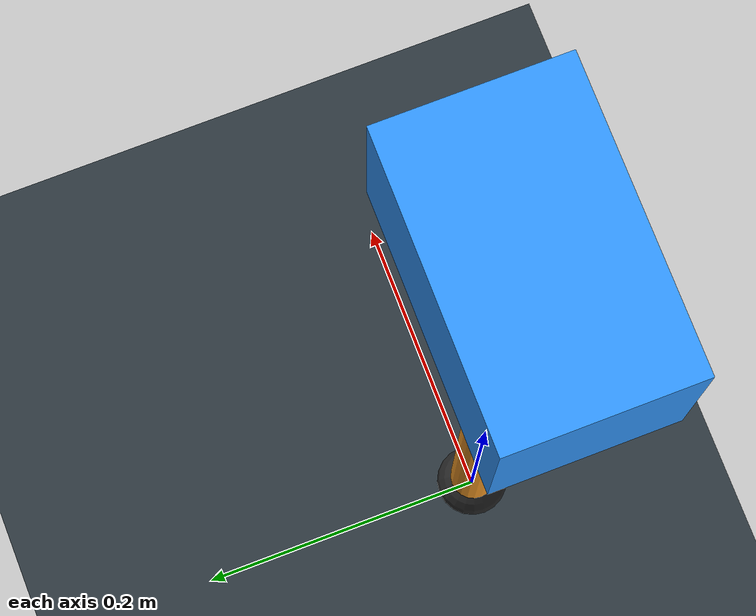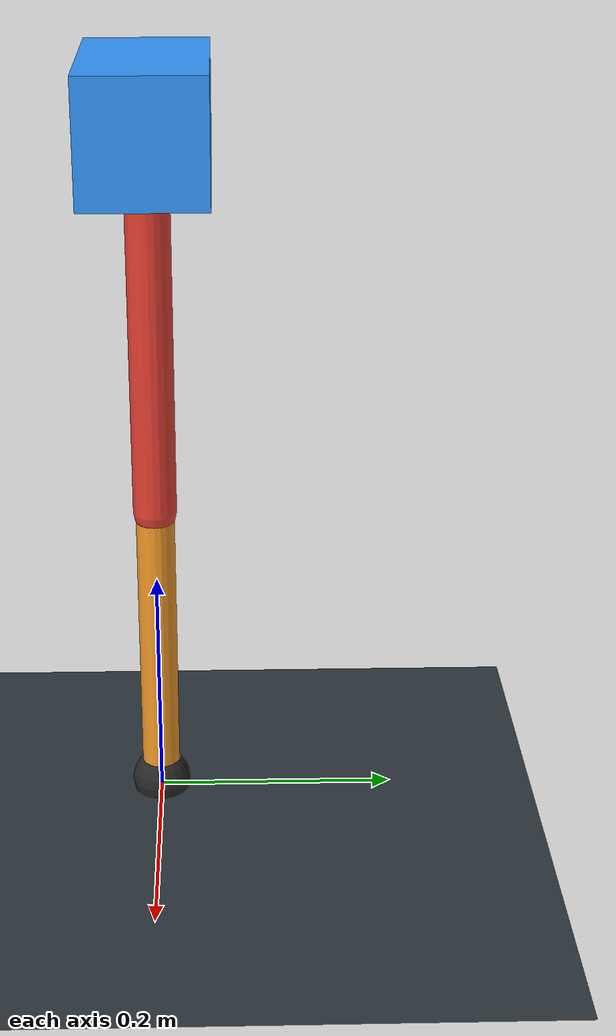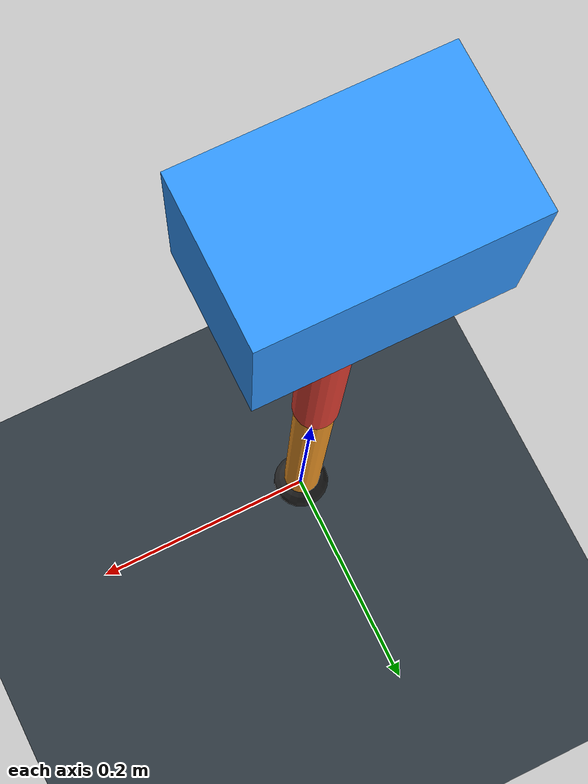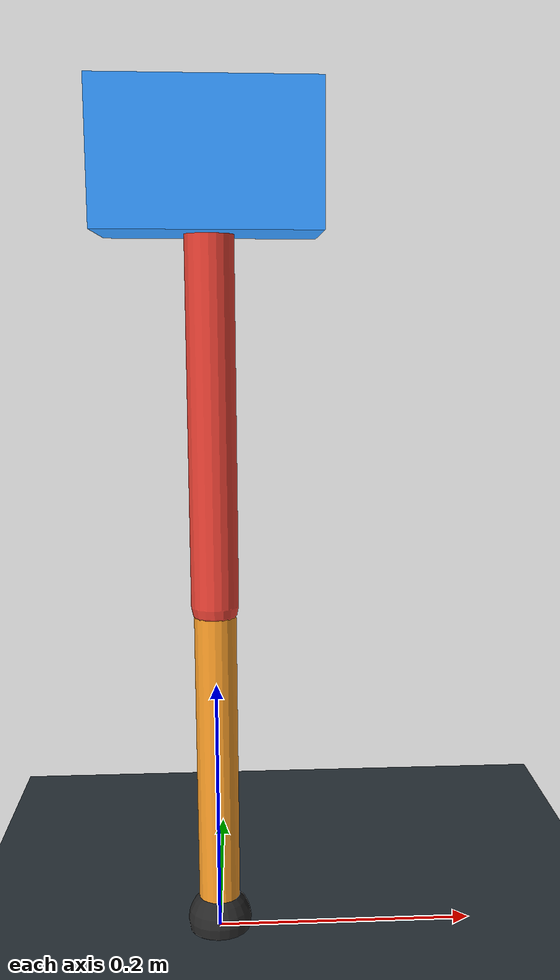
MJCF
<mujoco model="single_axis_two_bar">
  <compiler angle="radian" inertiafromgeom="true"/>
  <option timestep="0.001" integrator="implicitfast" gravity="0 0 -9.81"/>
  <default>
    <joint damping="0.08"/>
    <geom friction="1.2 0.01 0.0001" condim="3"/>
  </default>
  <worldbody>
    <geom name="floor" type="plane" size="5 5 0.1" rgba="0.18 0.22 0.25 1"/>
    <body name="carriage" pos="0 0 0.5867206001290443">
      <joint name="pole_slide" type="slide" axis="0 0 1"/>
      <geom name="payload" type="box" size="0.08 0.05 0.05" mass="3.5859330720594143" rgba="0.2 0.6 1 1"/>
      <body name="thigh" pos="0 0 0">
        <joint name="hip" type="hinge" axis="0 1 0"/>
        <geom name="thigh_link" type="capsule" fromto="0 0 0 0 0 -0.3241430129071711" size="0.018" mass="0.23095617986837771" rgba="0.9 0.25 0.2 1"/>
        <body name="shank" pos="0 0 -0.3241430129071711">
          <joint name="knee" type="hinge" axis="0 1 0"/>
          <geom name="shank_link" type="capsule" fromto="0 0 0 0 0 -0.25495038928771996" size="0.016" mass="0.1816555212396648" rgba="0.95 0.6 0.15 1"/>
          <geom name="foot" type="sphere" pos="0 0 -0.25495038928771996" size="0.025" mass="0.03" rgba="0.15 0.15 0.15 1"/>
          <site name="toe" pos="0 0 -0.25495038928771996" size="0.008"/>
        </body>
      </body>
    </body>
  </worldbody>
  <actuator>
    <motor name="hip_motor" joint="hip" ctrlrange="-27.31616664977322 27.31616664977322"/>
    <motor name="knee_motor" joint="knee" ctrlrange="-97.29861165374173 97.29861165374173"/>
  </actuator>
</mujoco>
